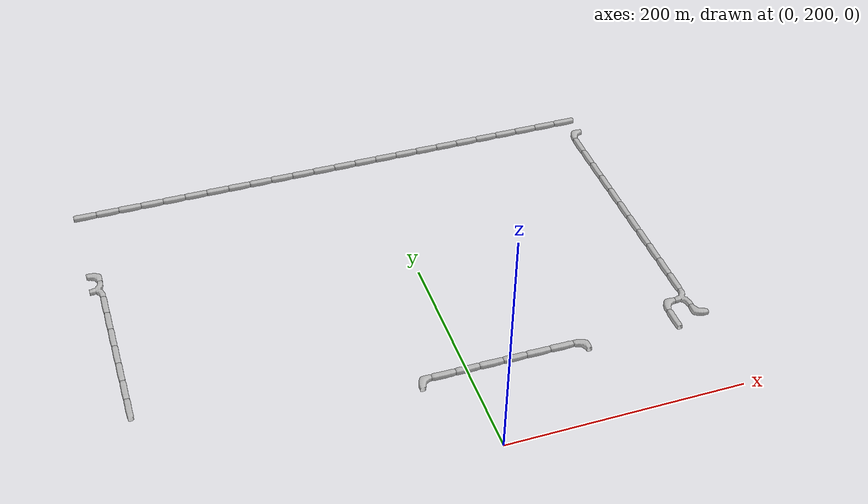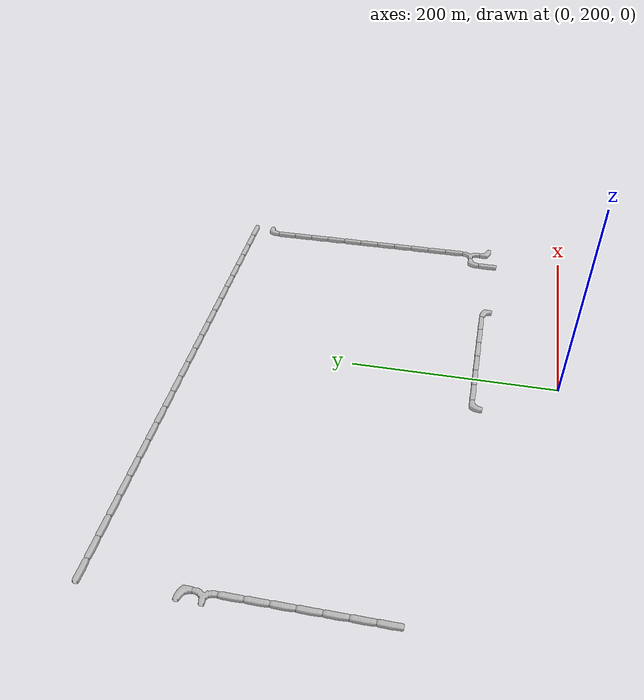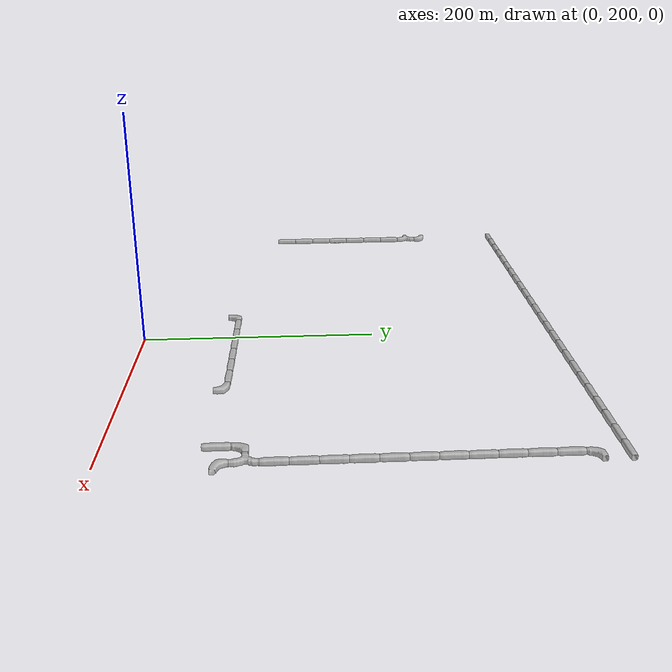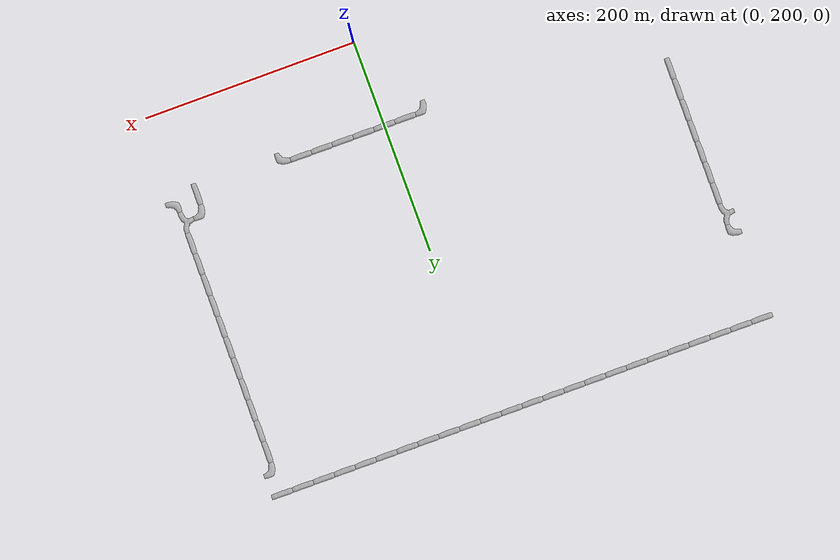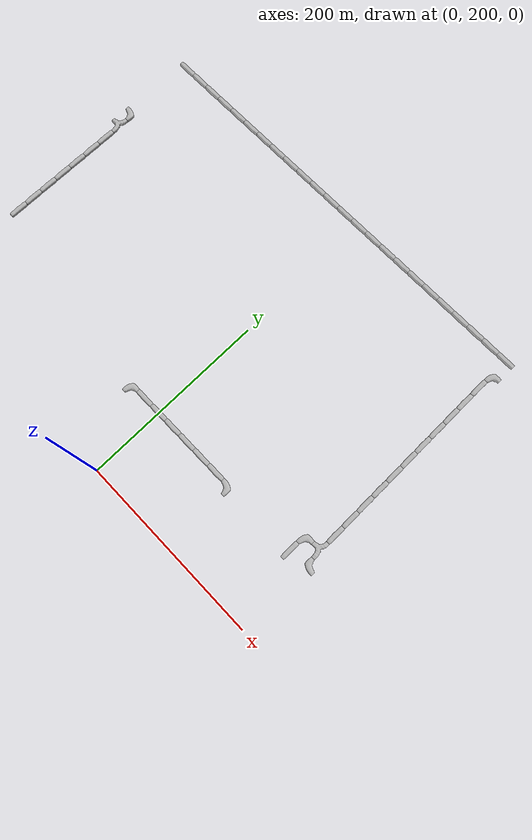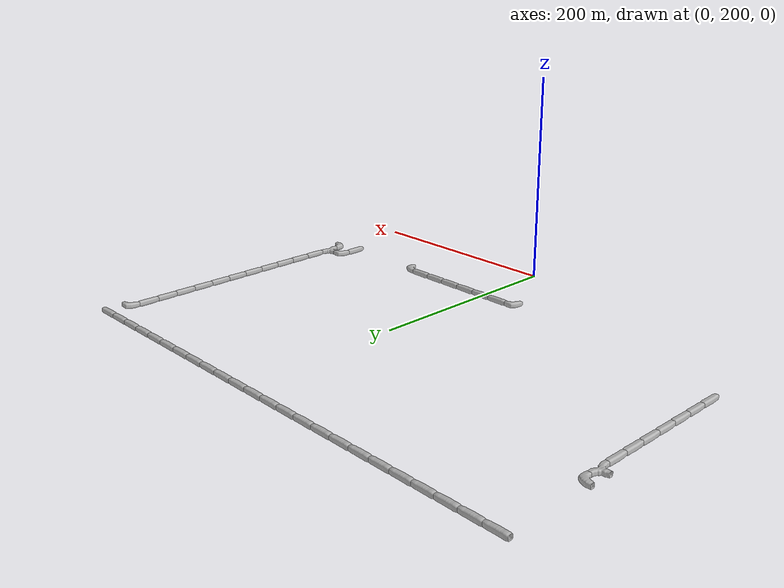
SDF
<sdf version="1.6">
 <world name="cave_32000_8">
  <include>
   <static>true</static>
   <name>cave_-13_16</name>
   <pose>-260 320 0 0 0 0.0</pose>
   <uri>model://cave_straight_20m</uri>
  </include>
  <include>
   <static>true</static>
   <name>cave_-13_17</name>
   <pose>-260 340 0 0 0 0.0</pose>
   <uri>model://cave_straight_20m</uri>
  </include>
  <include>
   <static>true</static>
   <name>cave_-13_18</name>
   <pose>-260 360 0 0 0 0.0</pose>
   <uri>model://cave_straight_20m</uri>
  </include>
  <include>
   <static>true</static>
   <name>cave_-13_19</name>
   <pose>-260 380 0 0 0 0.0</pose>
   <uri>model://cave_straight_20m</uri>
  </include>
  <include>
   <static>true</static>
   <name>cave_-13_20</name>
   <pose>-260 400 0 0 0 0.0</pose>
   <uri>model://cave_straight_20m</uri>
  </include>
  <include>
   <static>true</static>
   <name>cave_-13_21</name>
   <pose>-260 420 0 0 0 0.0</pose>
   <uri>model://cave_straight_20m</uri>
  </include>
  <include>
   <static>true</static>
   <name>cave_-13_22</name>
   <pose>-260 440 0 0 0 0.0</pose>
   <uri>model://cave_straight_20m</uri>
  </include>
  <include>
   <static>true</static>
   <name>cave_-13_23</name>
   <pose>-260 460 0 0 0 1.5707963267948966</pose>
   <uri>model://cave_3way_20m</uri>
  </include>
  <include>
   <static>true</static>
   <name>cave_-13_24</name>
   <pose>-260 480 0 0 0 3.141592653589793</pose>
   <uri>model://cave_L_20m</uri>
  </include>
  <include>
   <static>true</static>
   <name>cave_-2_14</name>
   <pose>-40 280 0 0 0 -1.5707963267948966</pose>
   <uri>model://cave_L_20m</uri>
  </include>
  <include>
   <static>true</static>
   <name>cave_-1_14</name>
   <pose>-20 280 0 0 0 1.5707963267948966</pose>
   <uri>model://cave_straight_20m</uri>
  </include>
  <include>
   <static>true</static>
   <name>cave_0_14</name>
   <pose>0 280 0 0 0 1.5707963267948966</pose>
   <uri>model://cave_straight_20m</uri>
  </include>
  <include>
   <static>true</static>
   <name>cave_1_14</name>
   <pose>20 280 0 0 0 1.5707963267948966</pose>
   <uri>model://cave_straight_20m</uri>
  </include>
  <include>
   <static>true</static>
   <name>cave_2_14</name>
   <pose>40 280 0 0 0 1.5707963267948966</pose>
   <uri>model://cave_straight_20m</uri>
  </include>
  <include>
   <static>true</static>
   <name>cave_3_14</name>
   <pose>60 280 0 0 0 1.5707963267948966</pose>
   <uri>model://cave_straight_20m</uri>
  </include>
  <include>
   <static>true</static>
   <name>cave_4_14</name>
   <pose>80 280 0 0 0 1.5707963267948966</pose>
   <uri>model://cave_straight_20m</uri>
  </include>
  <include>
   <static>true</static>
   <name>cave_5_14</name>
   <pose>100 280 0 0 0 3.141592653589793</pose>
   <uri>model://cave_L_20m</uri>
  </include>
  <include>
   <static>true</static>
   <name>cave_9_14</name>
   <pose>180 280 0 0 0 0.0</pose>
   <uri>model://cave_straight_20m</uri>
  </include>
  <include>
   <static>true</static>
   <name>cave_9_15</name>
   <pose>180 300 0 0 0 -1.5707963267948966</pose>
   <uri>model://cave_L_20m</uri>
  </include>
  <include>
   <static>true</static>
   <name>cave_10_15</name>
   <pose>200 300 0 0 0 1.5707963267948966</pose>
   <uri>model://cave_3way_20m</uri>
  </include>
  <include>
   <static>true</static>
   <name>cave_10_14</name>
   <pose>200 280 0 0 0 0.0</pose>
   <uri>model://cave_L_20m</uri>
  </include>
  <include>
   <static>true</static>
   <name>cave_10_16</name>
   <pose>200 320 0 0 0 0.0</pose>
   <uri>model://cave_straight_20m</uri>
  </include>
  <include>
   <static>true</static>
   <name>cave_10_17</name>
   <pose>200 340 0 0 0 0.0</pose>
   <uri>model://cave_straight_20m</uri>
  </include>
  <include>
   <static>true</static>
   <name>cave_10_18</name>
   <pose>200 360 0 0 0 0.0</pose>
   <uri>model://cave_straight_20m</uri>
  </include>
  <include>
   <static>true</static>
   <name>cave_10_19</name>
   <pose>200 380 0 0 0 0.0</pose>
   <uri>model://cave_straight_20m</uri>
  </include>
  <include>
   <static>true</static>
   <name>cave_10_20</name>
   <pose>200 400 0 0 0 0.0</pose>
   <uri>model://cave_straight_20m</uri>
  </include>
  <include>
   <static>true</static>
   <name>cave_10_21</name>
   <pose>200 420 0 0 0 0.0</pose>
   <uri>model://cave_straight_20m</uri>
  </include>
  <include>
   <static>true</static>
   <name>cave_10_22</name>
   <pose>200 440 0 0 0 0.0</pose>
   <uri>model://cave_straight_20m</uri>
  </include>
  <include>
   <static>true</static>
   <name>cave_10_23</name>
   <pose>200 460 0 0 0 0.0</pose>
   <uri>model://cave_straight_20m</uri>
  </include>
  <include>
   <static>true</static>
   <name>cave_10_24</name>
   <pose>200 480 0 0 0 0.0</pose>
   <uri>model://cave_straight_20m</uri>
  </include>
  <include>
   <static>true</static>
   <name>cave_10_25</name>
   <pose>200 500 0 0 0 0.0</pose>
   <uri>model://cave_straight_20m</uri>
  </include>
  <include>
   <static>true</static>
   <name>cave_10_26</name>
   <pose>200 520 0 0 0 0.0</pose>
   <uri>model://cave_straight_20m</uri>
  </include>
  <include>
   <static>true</static>
   <name>cave_10_27</name>
   <pose>200 540 0 0 0 -1.5707963267948966</pose>
   <uri>model://cave_L_20m</uri>
  </include>
  <include>
   <static>true</static>
   <name>cave_10_28</name>
   <pose>200 560 0 0 0 1.5707963267948966</pose>
   <uri>model://cave_straight_20m</uri>
  </include>
  <include>
   <static>true</static>
   <name>cave_9_28</name>
   <pose>180 560 0 0 0 1.5707963267948966</pose>
   <uri>model://cave_straight_20m</uri>
  </include>
  <include>
   <static>true</static>
   <name>cave_8_28</name>
   <pose>160 560 0 0 0 1.5707963267948966</pose>
   <uri>model://cave_straight_20m</uri>
  </include>
  <include>
   <static>true</static>
   <name>cave_7_28</name>
   <pose>140 560 0 0 0 1.5707963267948966</pose>
   <uri>model://cave_straight_20m</uri>
  </include>
  <include>
   <static>true</static>
   <name>cave_6_28</name>
   <pose>120 560 0 0 0 1.5707963267948966</pose>
   <uri>model://cave_straight_20m</uri>
  </include>
  <include>
   <static>true</static>
   <name>cave_5_28</name>
   <pose>100 560 0 0 0 1.5707963267948966</pose>
   <uri>model://cave_straight_20m</uri>
  </include>
  <include>
   <static>true</static>
   <name>cave_4_28</name>
   <pose>80 560 0 0 0 1.5707963267948966</pose>
   <uri>model://cave_straight_20m</uri>
  </include>
  <include>
   <static>true</static>
   <name>cave_3_28</name>
   <pose>60 560 0 0 0 1.5707963267948966</pose>
   <uri>model://cave_straight_20m</uri>
  </include>
  <include>
   <static>true</static>
   <name>cave_2_28</name>
   <pose>40 560 0 0 0 1.5707963267948966</pose>
   <uri>model://cave_straight_20m</uri>
  </include>
  <include>
   <static>true</static>
   <name>cave_1_28</name>
   <pose>20 560 0 0 0 1.5707963267948966</pose>
   <uri>model://cave_straight_20m</uri>
  </include>
  <include>
   <static>true</static>
   <name>cave_0_28</name>
   <pose>0 560 0 0 0 1.5707963267948966</pose>
   <uri>model://cave_straight_20m</uri>
  </include>
  <include>
   <static>true</static>
   <name>cave_-1_28</name>
   <pose>-20 560 0 0 0 1.5707963267948966</pose>
   <uri>model://cave_straight_20m</uri>
  </include>
  <include>
   <static>true</static>
   <name>cave_-2_28</name>
   <pose>-40 560 0 0 0 1.5707963267948966</pose>
   <uri>model://cave_straight_20m</uri>
  </include>
  <include>
   <static>true</static>
   <name>cave_-3_28</name>
   <pose>-60 560 0 0 0 1.5707963267948966</pose>
   <uri>model://cave_straight_20m</uri>
  </include>
  <include>
   <static>true</static>
   <name>cave_-4_28</name>
   <pose>-80 560 0 0 0 1.5707963267948966</pose>
   <uri>model://cave_straight_20m</uri>
  </include>
  <include>
   <static>true</static>
   <name>cave_-5_28</name>
   <pose>-100 560 0 0 0 1.5707963267948966</pose>
   <uri>model://cave_straight_20m</uri>
  </include>
  <include>
   <static>true</static>
   <name>cave_-6_28</name>
   <pose>-120 560 0 0 0 1.5707963267948966</pose>
   <uri>model://cave_straight_20m</uri>
  </include>
  <include>
   <static>true</static>
   <name>cave_-7_28</name>
   <pose>-140 560 0 0 0 1.5707963267948966</pose>
   <uri>model://cave_straight_20m</uri>
  </include>
  <include>
   <static>true</static>
   <name>cave_-8_28</name>
   <pose>-160 560 0 0 0 1.5707963267948966</pose>
   <uri>model://cave_straight_20m</uri>
  </include>
  <include>
   <static>true</static>
   <name>cave_-9_28</name>
   <pose>-180 560 0 0 0 1.5707963267948966</pose>
   <uri>model://cave_straight_20m</uri>
  </include>
  <include>
   <static>true</static>
   <name>cave_-10_28</name>
   <pose>-200 560 0 0 0 1.5707963267948966</pose>
   <uri>model://cave_straight_20m</uri>
  </include>
  <include>
   <static>true</static>
   <name>cave_-11_28</name>
   <pose>-220 560 0 0 0 1.5707963267948966</pose>
   <uri>model://cave_straight_20m</uri>
  </include>
  <include>
   <static>true</static>
   <name>cave_-12_28</name>
   <pose>-240 560 0 0 0 1.5707963267948966</pose>
   <uri>model://cave_straight_20m</uri>
  </include>
  <include>
   <static>true</static>
   <name>cave_-13_28</name>
   <pose>-260 560 0 0 0 1.5707963267948966</pose>
   <uri>model://cave_straight_20m</uri>
  </include>
 </world>
</sdf>
